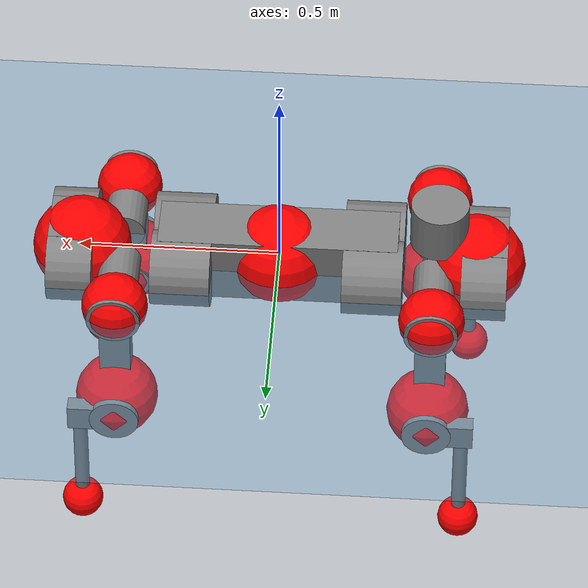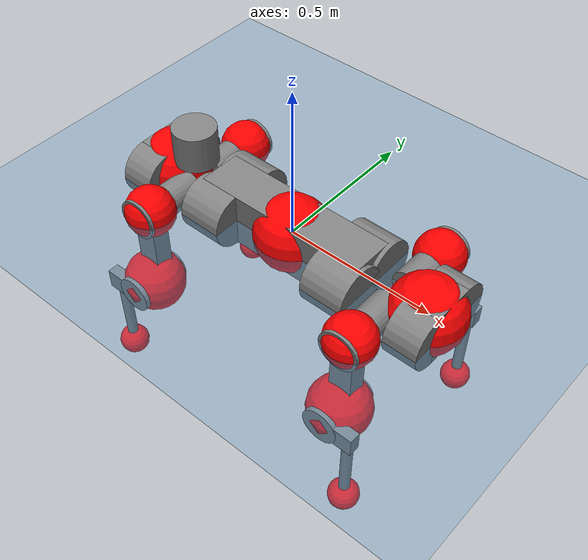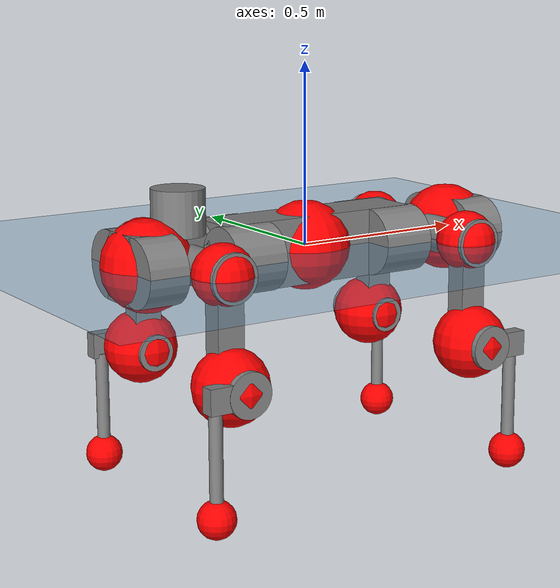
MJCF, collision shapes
<mujoco model="anymal_c">
  <compiler angle="radian" assetdir="assets" balanceinertia="true" inertiafromgeom="false"/>

  <option timestep="0.005" density="1.2" viscosity="2e-05"/>

  <size nkey="1"/>

  <visual>
    <quality shadowsize="8192"/>
    <map shadowclip="0.5"/>
  </visual>

  <default>
    <default class="/">
      <material specular="0" shininess="0.25"/>
      <geom contype="0" conaffinity="0" group="1" solref="-1000 -80"/>
      <site size="0.01 0.005 0.005" group="5"/>
      <general forcelimited="true" forcerange="-80 80" biastype="affine" gainprm="80" biasprm="0 -80 -2"/>
      <default class="anymal_c">
        <joint armature="0.01" damping="0.01" frictionloss="0.1"/>
        <default class="visual">
          <geom type="mesh" group="2"/>
          <default class="visual_zflip"/>
        </default>
        <default class="collision">
          <geom type="cylinder" group="3"/>
          <default class="foot">
            <geom size="0.03 0 0" type="sphere" condim="6" priority="1" friction="0.8 0.02 0.01" solimp="0.015 1 0.03"/>
          </default>
        </default>
      </default>
      <default class="reward_collision_sphere">
        <geom group="5" rgba="1 0 0 1"/>
      </default>
    </default>
  </default>

  <asset>
    <texture type="skybox" colorspace="auto" name="//unnamed_texture_0" builtin="gradient" rgb1="0.95 0.95 0.95" rgb2="0.95 0.95 0.95" width="100" height="600"/>
    <texture type="2d" colorspace="auto" name="texplane" builtin="checker" rgb1="0.345 0.575 0.748" rgb2="0.345 0.575 0.748" markrgb="1 1 1" width="512" height="512"/>
    <texture type="2d" colorspace="linear" name="base" file="base.png"/>
    <texture type="2d" colorspace="linear" name="top_shell" file="top_shell.png"/>
    <texture type="2d" colorspace="linear" name="bottom_shell" file="bottom_shell.png"/>
    <texture type="2d" colorspace="linear" name="remote" file="remote.png"/>
    <texture type="2d" colorspace="linear" name="hatch" file="hatch.png"/>
    <texture type="2d" colorspace="linear" name="handle" file="handle.png"/>
    <texture type="2d" colorspace="linear" name="face" file="face.png"/>
    <texture type="2d" colorspace="linear" name="battery" file="battery.png"/>
    <texture type="2d" colorspace="linear" name="lidar_cage" file="lidar_cage.png"/>
    <texture type="2d" colorspace="linear" name="depth_camera" file="depth_camera.png"/>
    <texture type="2d" colorspace="linear" name="wide_angle_camera" file="wide_angle_camera.png"/>
    <texture type="2d" colorspace="linear" name="lidar" file="lidar.png"/>
    <texture type="2d" colorspace="linear" name="drive" file="drive.png"/>
    <texture type="2d" colorspace="linear" name="hip_l" file="hip_l.png"/>
    <texture type="2d" colorspace="linear" name="shank_l" file="shank_l.png"/>
    <texture type="2d" colorspace="linear" name="foot" file="foot.png"/>
    <texture type="2d" colorspace="linear" name="thigh" file="thigh.png"/>
    <texture type="2d" colorspace="linear" name="shank_r" file="shank_r.png"/>
    <texture type="2d" colorspace="linear" name="hip_r" file="hip_r.png"/>
    <material name="MatPlane" class="/" texture="texplane" texuniform="true" texrepeat="2 2" specular="0.9" shininess="0.5"/>
    <material name="black_plastic" class="/" rgba="0.007 0.007 0.007 1"/>
    <material name="green" class="/" rgba="0.052 0.178 0.033 1"/>
    <material name="red" class="/" rgba="0.178 0.006 0.005 1"/>
    <material name="yellow" class="/" rgba="0.178 0.119 0.006 1"/>
    <material name="lwl" class="/" rgba="0.8 0.8 0.8 1"/>
    <material name="base" class="/" texture="base"/>
    <material name="top_shell" class="/" texture="top_shell"/>
    <material name="bottom_shell" class="/" texture="bottom_shell"/>
    <material name="hip_l" class="/" texture="hip_l"/>
    <material name="thigh" class="/" texture="thigh"/>
    <material name="shank_l" class="/" texture="shank_l"/>
    <material name="foot" class="/" texture="foot"/>
    <material name="hip_r" class="/" texture="hip_r"/>
    <material name="shank" class="/" texture="shank_r"/>
    <material name="hatch" class="/" texture="hatch"/>
    <material name="remote" class="/" texture="remote"/>
    <material name="handle" class="/" texture="handle"/>
    <material name="face" class="/" texture="face"/>
    <material name="depth_camera" class="/" texture="depth_camera"/>
    <material name="wide_angle_camera" class="/" texture="wide_angle_camera"/>
    <material name="battery" class="/" texture="battery"/>
    <material name="lidar_cage" class="/" texture="lidar_cage"/>
    <material name="lidar" class="/" texture="lidar"/>
    <material name="drive" class="/" texture="drive"/>
    <mesh name="base_0" class="/" file="base_0.obj"/>
    <mesh name="base_1" class="/" file="base_1.obj"/>
    <mesh name="base_2" class="/" file="base_2.obj"/>
    <mesh name="base_3" class="/" file="base_3.obj"/>
    <mesh name="base_4" class="/" file="base_4.obj"/>
    <mesh name="base_5" class="/" file="base_5.obj"/>
    <mesh name="top_shell" class="/" file="top_shell.obj"/>
    <mesh name="bottom_shell" class="/" file="bottom_shell.obj"/>
    <mesh name="remote" class="/" file="remote.obj"/>
    <mesh name="handle" class="/" file="handle.obj"/>
    <mesh name="face" class="/" file="face.obj"/>
    <mesh name="wide_angle_camera" class="/" file="wide_angle_camera.obj"/>
    <mesh name="depth_camera" class="/" file="depth_camera.obj"/>
    <mesh name="battery" class="/" file="battery.obj"/>
    <mesh name="lidar_cage" class="/" file="lidar_cage.obj"/>
    <mesh name="lidar" class="/" file="lidar.obj"/>
    <mesh name="drive" class="/" file="drive.obj"/>
    <mesh name="hip_l" class="/" file="hip_l.obj"/>
    <mesh name="thigh" class="/" file="thigh.obj"/>
    <mesh name="shank_l" class="/" file="shank_l.obj"/>
    <mesh name="foot" class="/" file="foot.obj"/>
    <mesh name="hip_r" class="/" file="hip_r.obj"/>
    <mesh name="hatch" class="/" file="hatch.obj"/>
    <mesh name="shank_r" class="/" file="shank_r.obj"/>
  </asset>

  <worldbody>
    <geom name="floor" class="/" size="100 100 0.125" type="plane" group="0" material="MatPlane"/>
    <light name="toplight_shadow" class="/" pos="0 0 5" dir="0.0990148 0.0990148 -0.990148" type="directional" ambient="0.04 0.04 0.04" diffuse="0.55 0.55 0.55" specular="0.12 0.12 0.12"/>
    <light name="toplight_fill" class="/" pos="0 0 5" dir="0.0990148 0.0990148 -0.990148" type="directional" castshadow="false" ambient="0.04 0.04 0.04" diffuse="0.3 0.3 0.3" specular="0.08 0.08 0.08"/>
    <body name="trunk" childclass="anymal_c" pos="0.00105083 0.000173489 -0.000886172" quat="1 0.000102254 -0.000116087 -7.68886e-05">
      <inertial pos="-4.38858e-05 -0.00240084 0.0487056" quat="0.496807 0.500392 0.503215 0.499564" mass="21.3646" diaginertia="0.993206 0.590986 0.211521"/>
      <joint name="//unnamed_joint_0" type="free" armature="0" damping="0" frictionloss="0"/>
      <geom name="//unnamed_geom_1" class="visual" material="green" mesh="base_0"/>
      <geom name="//unnamed_geom_2" class="visual" material="yellow" mesh="base_1"/>
      <geom name="//unnamed_geom_3" class="visual" material="red" mesh="base_2"/>
      <geom name="//unnamed_geom_4" class="visual" material="black_plastic" mesh="base_3"/>
      <geom name="//unnamed_geom_5" class="visual" material="lwl" mesh="base_4"/>
      <geom name="//unnamed_geom_6" class="visual" material="base" mesh="base_5"/>
      <geom name="trunk_1" class="collision" size="0.297349 0.0717738 0.0922806" type="box"/>
      <geom name="trunk_2" class="collision" size="0.0922806 0.0743372" pos="0.237351 0.0692182 0" quat="0.707107 0 0.707107 0"/>
      <geom name="trunk_3" class="collision" size="0.0922806 0.0743372" pos="-0.237351 0.0692182 0" quat="0.707107 0 0.707107 0"/>
      <geom name="trunk_4" class="collision" size="0.0922806 0.0743372" pos="0.237351 -0.0692182 0" quat="0.707107 0 0.707107 0"/>
      <geom name="trunk_5" class="collision" size="0.0922806 0.0743372" pos="-0.237351 -0.0692182 0" quat="0.707107 0 0.707107 0"/>
      <geom name="//unnamed_geom_12" class="visual" material="top_shell" mesh="top_shell"/>
      <geom name="//unnamed_geom_13" class="visual" material="bottom_shell" mesh="bottom_shell"/>
      <geom name="//unnamed_geom_14" class="visual" material="remote" mesh="remote"/>
      <geom name="//unnamed_geom_15" class="visual" material="handle" mesh="handle"/>
      <geom name="//unnamed_geom_16" class="visual" pos="0.452331 0 0" quat="1 0 0 0" material="face" mesh="face"/>
      <geom name="trunk_6" class="collision" size="0.0563937 0.0717738 0.0922806" pos="0.51235 0 0" type="box"/>
      <geom name="//unnamed_geom_18" class="collision" size="0.0922806 0.0563937" pos="0.51235 0.0692182 0" quat="0.707107 0 0.707107 0"/>
      <geom name="//unnamed_geom_19" class="collision" size="0.0922806 0.0563937" pos="0.51235 -0.0692182 0" quat="0.707107 0 0.707107 0"/>
      <geom name="//unnamed_geom_20" class="visual" pos="0.50378 0 -0.0283563" quat="0.965926 0 0.258819 0" material="depth_camera" mesh="depth_camera"/>
      <geom name="//unnamed_geom_21" class="visual" pos="0.55982 0 0.0149089" material="wide_angle_camera" mesh="wide_angle_camera"/>
      <geom name="//unnamed_geom_22" class="visual_zflip" pos="-0.452331 0 0" quat="0 0 0 1" material="face" mesh="face"/>
      <geom name="trunk_7" class="collision" size="0.0563937 0.0717738 0.0922806" pos="-0.51235 0 0" quat="0 0 0 1" type="box"/>
      <geom name="//unnamed_geom_24" class="collision" size="0.0922806 0.0563937" pos="-0.51235 -0.0692182 0" quat="0 -0.707107 0 0.707107"/>
      <geom name="//unnamed_geom_25" class="collision" size="0.0922806 0.0563937" pos="-0.51235 0.0692182 0" quat="0 -0.707107 0 0.707107"/>
      <geom name="//unnamed_geom_26" class="visual" pos="-0.50378 0 -0.0283563" quat="0 -0.258819 0 0.965926" material="depth_camera" mesh="depth_camera"/>
      <geom name="//unnamed_geom_27" class="visual_zflip" pos="-0.55982 0 0.0149089" quat="0 0 0 1" material="wide_angle_camera" mesh="wide_angle_camera"/>
      <geom name="//unnamed_geom_28" class="visual" material="battery" mesh="battery"/>
      <geom name="//unnamed_geom_29" class="visual" pos="0 0.0742579 0.0296562" quat="0.683013 -0.183013 0.183013 0.683013" material="depth_camera" mesh="depth_camera"/>
      <geom name="//unnamed_geom_30" class="visual" pos="0 -0.0742579 0.0296562" quat="0.683013 0.183013 0.183013 -0.683013" material="depth_camera" mesh="depth_camera"/>
      <geom name="//unnamed_geom_31" class="visual" pos="-0.397222 0 0.0732002" quat="1 0 0 0" material="lidar_cage" mesh="lidar_cage"/>
      <geom name="trunk_8" class="collision" size="0.0717738 0.0615204" pos="-0.397222 0 0.132956"/>
      <geom name="//unnamed_geom_33" class="visual" pos="-0.397222 -4.02447e-05 0.14162" quat="0.707107 0 0 -0.707107" material="lidar" mesh="lidar"/>
      <geom name="//unnamed_geom_34" class="visual" pos="0.327271 0.102841 -1.22313e-10" quat="0.258819 0.965926 0 0" material="drive" mesh="drive"/>
      <geom name="//unnamed_geom_35" class="visual" pos="0.327271 -0.102841 1.22313e-10" quat="0.258819 -0.965926 0 0" material="drive" mesh="drive"/>
      <geom name="//unnamed_geom_36" class="visual" pos="-0.327271 0.102841 1.22313e-10" quat="0 0 0.965926 -0.258819" material="drive" mesh="drive"/>
      <geom name="//unnamed_geom_37" class="visual" pos="-0.327271 -0.102841 -1.22313e-10" quat="0 0 -0.965926 -0.258819" material="drive" mesh="drive"/>
      <geom name="//unnamed_geom_38" class="visual" pos="0.126587 0 0.0727023" quat="1 0 0 0" material="hatch" mesh="hatch"/>
      <geom name="//unnamed_geom_39" class="reward_collision_sphere" size="0.123041"/>
      <geom name="//unnamed_geom_40" class="reward_collision_sphere" size="0.123041" pos="0.491071 0 0"/>
      <geom name="//unnamed_geom_41" class="reward_collision_sphere" size="0.123041" pos="-0.491071 0 0"/>
      <site name="imu" pos="0.284188 0.00818648 0.0334536" size="0.0102534"/>
      <camera name="track" pos="0 -1.97766 0" quat="0.707107 0.707107 0 0" mode="trackcom"/>
      <camera name="ego_camera" pos="0.491071 0 -0.0398369" quat="-0.5 -0.5 0.5 0.5"/>
      <body name="LF_HIP" pos="0.326106 0.101533 -0.000607459" quat="0.258719 0.965953 -3.72181e-05 9.7872e-05">
        <inertial pos="0.0620448 -0.0164403 -0.00854302" quat="-0.128022 0.709713 -0.135273 0.679426" mass="2.90194" diaginertia="0.00874518 0.00438413 0.00312653"/>
        <joint name="LF_HAA" pos="0 0 0" axis="0.999989 0.00245802 0.00401938" range="-0.717135 0.478394" armature="0.0105137" damping="0.0135678" frictionloss="0.0966568"/>
        <geom name="//unnamed_geom_42" class="visual" pos="0 -7.19511e-06 1.18179e-06" quat="0.258819 -0.965926 0 0" material="hip_l" mesh="hip_l"/>
        <geom name="//unnamed_geom_43" class="visual" pos="0.065367 -0.0778598 -0.0450048" quat="0.183013 -0.683013 0.683013 0.183013" material="drive" mesh="drive"/>
        <geom name="//unnamed_geom_44" class="collision" size="0.051267 0.0717738" pos="0.0653669 -0.0118262 -0.00687684" quat="-0.353553 -0.612372 0.612372 -0.353553"/>
        <body name="LF_THIGH" pos="0.0654116 -0.0695527 -0.0414832" quat="0.1819 -0.682993 0.68321 0.183457">
          <inertial pos="0.0343681 -2.24669e-05 -0.244338" quat="0.992596 -0.000615966 -0.0793659 0.0919497" mass="3.23721" diaginertia="0.0465622 0.0271921 0.00402696"/>
          <joint name="LF_HFE" pos="0 0 0" axis="0.999997 0.0022993 0.00039693" stiffness="0.0027687" range="-3.09869 3.15909" armature="0.0108166" damping="0.0173208" frictionloss="0.100299"/>
          <geom name="//unnamed_geom_45" class="visual" pos="0.00203809 3.21156e-06 0" quat="0.707107 0 0 -0.707107" material="thigh" mesh="thigh"/>
          <geom name="//unnamed_geom_46" class="collision" size="0.0666471 0.0410136" pos="0.0436507 0 0" quat="0.5 0.5 -0.5 -0.5"/>
          <geom name="//unnamed_geom_47" class="collision" size="0.0384503 0.0307602 0.144895" pos="0.032738 0 -0.140738" quat="0.707107 0 0 -0.707107" type="box"/>
          <geom name="//unnamed_geom_48" class="visual" pos="0.109454 0 -0.283838" quat="1 0 0 0" material="drive" mesh="drive"/>
          <geom name="//unnamed_geom_49" class="collision" size="0.051267 0.0717738" pos="0.0330654 0 -0.283838" quat="0.707107 0 0.707107 0"/>
          <geom name="//unnamed_geom_50" class="reward_collision_sphere" size="0.0820272" pos="0.0272817 0 0"/>
          <body name="LF_SHANK" pos="0.109422 0.00204266 -0.284598" quat="1 -0.000241194 -0.000344772 -0.000158155">
            <inertial pos="0.00627586 -0.0614895 -0.0801904" quat="0.992916 -0.116047 -0.00111052 -0.0255061" mass="0.636839" diaginertia="0.0154346 0.00883375 0.00109317"/>
            <joint name="LF_KFE" pos="0 0 0" axis="0.999999 0.00108633 -0.00105638" range="-3.12007 3.13346" armature="0.00980492" damping="0.011439" frictionloss="0.101614"/>
            <geom name="//unnamed_geom_51" class="visual" pos="0.000664578 0.00354356 0" quat="0.707107 0 0 -0.707107" material="shank_l" mesh="shank_l"/>
            <geom name="LF_kfe_act" class="collision" size="0.0615204 0.0205068" pos="0.0218254 0 0" quat="0.5 0.5 -0.5 -0.5"/>
            <geom name="//unnamed_geom_53" class="collision" size="0.058956 0.0346052 0.0194815" pos="0.0218254 -0.0568568 0" quat="0.5 0.5 -0.5 -0.5" type="box"/>
            <geom name="//unnamed_geom_54" class="visual" pos="0.0142409 -0.0858257 -0.336592" quat="0.382683 0 0 -0.92388" material="foot" mesh="foot"/>
            <geom name="LF_calf" class="collision" size="0.0179435 0.144831" pos="0.014241 -0.0869677 -0.168296" quat="0.707107 0 0 -0.707107"/>
            <geom name="LF_foot" class="foot" size="0.0302233" pos="0.014241 -0.0869677 -0.314183" quat="0.707107 0 0 -0.707107"/>
            <geom name="//unnamed_geom_57" class="reward_collision_sphere" size="0.102534" pos="-0.0545634 0 0"/>
            <geom name="//unnamed_geom_58" class="reward_collision_sphere" size="0.051267" pos="0.014241 -0.0869677 -0.314183"/>
            <site name="LF_foot" class="foot" pos="0.014241 -0.0869677 -0.314183" quat="0.707107 0 0 -0.707107" size="0.0102534"/>
          </body>
        </body>
      </body>
      <body name="RF_HIP" pos="0.32524 -0.102924 0.00156406" quat="0.258759 -0.965942 0.000115565 8.03654e-05">
        <inertial pos="0.0611287 0.012855 -0.00945653" quat="0.132982 0.669971 0.132267 0.718303" mass="2.9597" diaginertia="0.00879122 0.00476566 0.00313547"/>
        <joint name="RF_HAA" pos="0 0 0" axis="0.999972 -0.00698907 -0.00274983" range="-0.500625 0.71798" armature="0.0102345" damping="0.00184235" frictionloss="0.0984777"/>
        <geom name="//unnamed_geom_59" class="visual" pos="0 7.19505e-06 1.18179e-06" quat="0.258819 0.965926 0 0" material="hip_r" mesh="hip_r"/>
        <geom name="//unnamed_geom_60" class="visual" pos="0.0653669 0.0778598 -0.0450048" quat="0.183013 0.683013 0.683013 -0.183013" material="drive" mesh="drive"/>
        <geom name="//unnamed_geom_61" class="collision" size="0.051267 0.0717738" pos="0.0653669 0.0118262 -0.00687684" quat="-0.353553 0.612372 0.612372 0.353553"/>
        <body name="RF_THIGH" pos="0.0659536 0.0719606 -0.0440433" quat="0.18376 0.683243 0.682573 -0.183043">
          <inertial pos="0.0362643 0.000983605 -0.244717" quat="0.992941 -0.00285191 -0.0809275 0.0866668" mass="3.41851" diaginertia="0.0467229 0.0277695 0.00426948"/>
          <joint name="RF_HFE" pos="0 0 0" axis="0.999999 -0.000646947 -0.00128382" range="-3.16016 3.15213" armature="0.00977879" damping="0.0119349" frictionloss="0.0998788"/>
          <geom name="//unnamed_geom_62" class="visual" pos="0.00203809 3.21156e-06 0" quat="0.707107 0 0 -0.707107" material="thigh" mesh="thigh"/>
          <geom name="//unnamed_geom_63" class="collision" size="0.0666471 0.0410136" pos="0.0436507 0 0" quat="0.5 0.5 0.5 0.5"/>
          <geom name="//unnamed_geom_64" class="collision" size="0.0384503 0.0307602 0.144895" pos="0.032738 0 -0.140738" quat="0.707107 0 0 0.707107" type="box"/>
          <geom name="//unnamed_geom_65" class="visual" pos="0.109454 0 -0.283838" quat="1 0 0 0" material="drive" mesh="drive"/>
          <geom name="//unnamed_geom_66" class="collision" size="0.051267 0.0717738" pos="0.0330654 0 -0.283838" quat="0.707107 0 0.707107 0"/>
          <geom name="//unnamed_geom_67" class="reward_collision_sphere" size="0.0820272" pos="0.0272817 0 0"/>
          <body name="RF_SHANK" pos="0.108571 -0.000641744 -0.28258" quat="1 0.000171617 -7.85941e-05 -0.000133328">
            <inertial pos="0.00449484 0.0606813 -0.0800661" quat="0.993871 0.10916 -0.00712201 0.0159567" mass="0.653639" diaginertia="0.0159801 0.00896778 0.00111898"/>
            <joint name="RF_KFE" pos="0 0 0" axis="1 -0.000431998 0.000546073" range="-3.18621 3.12227" armature="0.0113501" damping="0.0217795" frictionloss="0.100893"/>
            <geom name="//unnamed_geom_68" class="visual" pos="0.000664574 -0.00354356 0" quat="0.707107 0 0 0.707107" material="shank" mesh="shank_r"/>
            <geom name="RF_kfe_act" class="collision" size="0.0615204 0.0205068" pos="0.0218254 0 0" quat="0.5 0.5 0.5 0.5"/>
            <geom name="//unnamed_geom_70" class="collision" size="0.058956 0.0346052 0.0194815" pos="0.0218254 0.0568568 0" quat="0.5 0.5 0.5 0.5" type="box"/>
            <geom name="//unnamed_geom_71" class="visual" pos="0.0142412 0.0858257 -0.336592" quat="0.382683 0 0 0.92388" material="foot" mesh="foot"/>
            <geom name="RF_calf" class="collision" size="0.0179435 0.144831" pos="0.014241 0.0869677 -0.168296" quat="0.707107 0 0 0.707107"/>
            <geom name="RF_foot" class="foot" size="0.0278974" pos="0.014241 0.0869677 -0.314183" quat="0.707107 0 0 0.707107"/>
            <geom name="//unnamed_geom_74" class="reward_collision_sphere" size="0.102534" pos="-0.0545634 0 0"/>
            <geom name="//unnamed_geom_75" class="reward_collision_sphere" size="0.051267" pos="0.014241 0.0869677 -0.314183"/>
            <site name="RF_foot" class="foot" pos="0.014241 0.0869677 -0.314183" quat="0.707107 0 0 0.707107" size="0.0102534"/>
          </body>
        </body>
      </body>
      <body name="LH_HIP" pos="-0.324222 0.101801 -0.000970311" quat="2.55997e-05 1.92954e-05 0.966007 -0.258518">
        <inertial pos="0.0621324 0.0160865 -0.010939" quat="0.135753 0.673611 0.134937 0.713871" mass="3.09088" diaginertia="0.00966557 0.00485787 0.00331707"/>
        <joint name="LH_HAA" pos="0 0 0" axis="0.999933 0.000223097 -0.0115825" range="-0.492272 0.706634" armature="0.0102491" damping="0" frictionloss="0.102166"/>
        <geom name="//unnamed_geom_76" class="visual" pos="0 7.19505e-06 1.18179e-06" quat="-0.258819 -0.965926 0 0" material="hip_r" mesh="hip_r"/>
        <geom name="//unnamed_geom_77" class="visual" pos="0.0653669 0.0778598 -0.0450048" quat="0.183013 0.683013 0.683013 -0.183013" material="drive" mesh="drive"/>
        <geom name="//unnamed_geom_78" class="collision" size="0.051267 0.0717738" pos="0.0653669 0.0118262 -0.00687684" quat="-0.353553 0.612372 0.612372 0.353553"/>
        <body name="LH_THIGH" pos="0.0650918 0.0716239 -0.0431176" quat="0.183601 0.68294 0.682952 -0.182923">
          <inertial pos="0.0310587 -0.00104457 -0.247117" quat="0.992946 -0.00459216 -0.0796347 0.0877245" mass="3.27618" diaginertia="0.0444823 0.0282381 0.00398924"/>
          <joint name="LH_HFE" pos="0 0 0" axis="0.999999 0.000181137 -0.00145013" stiffness="0.00778406" range="-3.14469 3.11772" armature="0.0098284" damping="0" frictionloss="0.10161"/>
          <geom name="//unnamed_geom_79" class="visual" pos="0.00203809 3.21156e-06 0" quat="0.707107 0 0 -0.707107" material="thigh" mesh="thigh"/>
          <geom name="//unnamed_geom_80" class="collision" size="0.0666471 0.0410136" pos="0.0436507 0 0" quat="0.5 0.5 -0.5 -0.5"/>
          <geom name="//unnamed_geom_81" class="collision" size="0.0384503 0.0307602 0.144895" pos="0.032738 0 -0.140738" quat="0.707107 0 0 -0.707107" type="box"/>
          <geom name="//unnamed_geom_82" class="visual" pos="0.109454 0 -0.283838" quat="1 0 0 0" material="drive" mesh="drive"/>
          <geom name="//unnamed_geom_83" class="collision" size="0.051267 0.0717738" pos="0.0330654 0 -0.283838" quat="0.707107 0 0.707107 0"/>
          <geom name="//unnamed_geom_84" class="reward_collision_sphere" size="0.0820272" pos="0.0272817 0 0"/>
          <body name="LH_SHANK" pos="0.109803 -0.00182543 -0.282522" quat="1 1.02133e-05 0.000178237 -4.72497e-05">
            <inertial pos="0.006045 0.0628124 -0.0793478" quat="0.992879 0.116382 -0.00531172 0.0248601" mass="0.654593" diaginertia="0.0160034 0.00927655 0.00111808"/>
            <joint name="LH_KFE" pos="0 0 0" axis="0.999989 -0.00409011 -0.0020879" range="-3.10084 3.11441" armature="0.0115527" damping="0.0217063" frictionloss="0.0918566"/>
            <geom name="//unnamed_geom_85" class="visual" pos="0.000664574 -0.00354356 0" quat="-0.707107 0 0 -0.707107" material="shank" mesh="shank_r"/>
            <geom name="LH_kfe_act" class="collision" size="0.0615204 0.0205068" pos="0.0218254 0 0" quat="0.5 0.5 -0.5 -0.5"/>
            <geom name="//unnamed_geom_87" class="collision" size="0.058956 0.0346052 0.0194815" pos="0.0218254 0.0568568 0" quat="0.5 0.5 -0.5 -0.5" type="box"/>
            <geom name="//unnamed_geom_88" class="visual" pos="0.0142412 0.0858257 -0.336592" quat="-0.382683 0 0 -0.92388" material="foot" mesh="foot"/>
            <geom name="LH_calf" class="collision" size="0.0179435 0.144831" pos="0.014241 0.0869677 -0.168296" quat="0.707107 0 0 -0.707107"/>
            <geom name="LH_foot" class="foot" size="0.0315428" pos="0.014241 0.0869677 -0.314183" quat="0.707107 0 0 -0.707107"/>
            <geom name="//unnamed_geom_91" class="reward_collision_sphere" size="0.102534" pos="-0.0545634 0 0"/>
            <geom name="//unnamed_geom_92" class="reward_collision_sphere" size="0.051267" pos="0.014241 0.0869677 -0.314183"/>
            <site name="LH_foot" class="foot" pos="0.014241 0.0869677 -0.314183" quat="0.707107 0 0 -0.707107" size="0.0102534"/>
          </body>
        </body>
      </body>
      <body name="RH_HIP" pos="-0.324558 -0.103444 0.000224908" quat="6.04985e-05 0.000103572 -0.965974 -0.258637">
        <inertial pos="0.0611863 -0.0150152 -0.011068" quat="-0.121402 0.710944 -0.146256 0.677074" mass="2.97396" diaginertia="0.00878905 0.00448507 0.00311132"/>
        <joint name="RH_HAA" pos="0 0 0" axis="0.999907 0.00752874 -0.0113882" range="-0.77199 0.498201" armature="0.0105096" damping="0.00840578" frictionloss="0.102315"/>
        <geom name="//unnamed_geom_93" class="visual" pos="0 -7.19511e-06 1.18179e-06" quat="-0.258819 0.965926 0 0" material="hip_l" mesh="hip_l"/>
        <geom name="//unnamed_geom_94" class="visual" pos="0.065367 -0.0778598 -0.0450048" quat="-0.183013 0.683013 -0.683013 -0.183013" material="drive" mesh="drive"/>
        <geom name="//unnamed_geom_95" class="collision" size="0.051267 0.0717738" pos="0.0653669 -0.0118262 -0.00687684" quat="0.353553 0.612372 -0.612372 0.353553"/>
        <body name="RH_THIGH" pos="0.0678496 -0.0720927 -0.0438328" quat="-0.182657 0.682424 -0.683712 -0.182952">
          <inertial pos="0.0343313 0.000464483 -0.245523" quat="0.993166 -0.0044471 -0.0812186 0.0836961" mass="3.20493" diaginertia="0.0453072 0.0278015 0.00406081"/>
          <joint name="RH_HFE" pos="0 0 0" axis="0.999989 0.000446462 0.00476381" stiffness="0.00295632" range="-3.12742 3.16333" armature="0.0105712" damping="0.00910483" frictionloss="0.103615"/>
          <geom name="//unnamed_geom_96" class="visual" pos="0.00203809 3.21156e-06 0" quat="0.707107 0 0 -0.707107" material="thigh" mesh="thigh"/>
          <geom name="//unnamed_geom_97" class="collision" size="0.0666471 0.0410136" pos="0.0436507 0 0" quat="0.5 0.5 0.5 0.5"/>
          <geom name="//unnamed_geom_98" class="collision" size="0.0384503 0.0307602 0.144895" pos="0.032738 0 -0.140738" quat="0.707107 0 0 0.707107" type="box"/>
          <geom name="//unnamed_geom_99" class="visual" pos="0.109454 0 -0.283838" quat="1 0 0 0" material="drive" mesh="drive"/>
          <geom name="//unnamed_geom_100" class="collision" size="0.051267 0.0717738" pos="0.0330654 0 -0.283838" quat="0.707107 0 0.707107 0"/>
          <geom name="//unnamed_geom_101" class="reward_collision_sphere" size="0.0820272" pos="0.0272817 0 0"/>
          <body name="RH_SHANK" pos="0.108918 0.0022189 -0.283657" quat="0.999999 0.000753411 0.000477383 -0.000845619">
            <inertial pos="0.00810102 -0.0600262 -0.0814097" quat="0.993316 -0.112404 -0.0090943 -0.0246289" mass="0.64718" diaginertia="0.0157187 0.00874319 0.00110024"/>
            <joint name="RH_KFE" pos="0 0 0" axis="0.999996 0.00198452 -0.00215961" range="-3.13263 3.18357" armature="0.010248" damping="0.0218339" frictionloss="0.100663"/>
            <geom name="//unnamed_geom_102" class="visual" pos="0.000664578 0.00354356 0" quat="0.707107 0 0 -0.707107" material="shank_l" mesh="shank_l"/>
            <geom name="RH_kfe_act" class="collision" size="0.0615204 0.0205068" pos="0.0218254 0 0" quat="0.5 0.5 0.5 0.5"/>
            <geom name="//unnamed_geom_104" class="collision" size="0.058956 0.0346052 0.0194815" pos="0.0218254 -0.0568568 0" quat="0.5 0.5 0.5 0.5" type="box"/>
            <geom name="//unnamed_geom_105" class="visual" pos="0.0142409 -0.0858257 -0.336592" quat="0.382683 0 0 -0.92388" material="foot" mesh="foot"/>
            <geom name="RH_calf" class="collision" size="0.0179435 0.144831" pos="0.014241 -0.0869677 -0.168296" quat="0.707107 0 0 0.707107"/>
            <geom name="RH_foot" class="foot" size="0.0280396" pos="0.014241 -0.0869677 -0.314183" quat="0.707107 0 0 0.707107"/>
            <geom name="//unnamed_geom_108" class="reward_collision_sphere" size="0.102534" pos="-0.0545634 0 0"/>
            <geom name="//unnamed_geom_109" class="reward_collision_sphere" size="0.051267" pos="0.014241 -0.0869677 -0.314183"/>
            <site name="RH_foot" class="foot" pos="0.014241 -0.0869677 -0.314183" quat="0.707107 0 0 0.707107" size="0.0102534"/>
          </body>
        </body>
      </body>
    </body>
  </worldbody>

  <contact>
    <pair class="/" geom1="floor" geom2="LF_foot" name="//unnamed_contact_0"/>
    <pair class="/" geom1="floor" geom2="RF_foot" name="//unnamed_contact_1"/>
    <pair class="/" geom1="floor" geom2="LH_foot" name="//unnamed_contact_2"/>
    <pair class="/" geom1="floor" geom2="RH_foot" name="//unnamed_contact_3"/>
  </contact>

  <actuator>
    <general name="LF_HAA" class="/" joint="LF_HAA" forcerange="-77.674 77.674" gainprm="81.6831" biasprm="0 -81.6831 -2.01731"/>
    <general name="LF_HFE" class="/" joint="LF_HFE" forcerange="-74.0698 74.0698" gainprm="81.6831" biasprm="0 -81.6831 -2.01731"/>
    <general name="LF_KFE" class="/" joint="LF_KFE" forcerange="-85.3856 85.3856" gainprm="81.6831" biasprm="0 -81.6831 -2.01731"/>
    <general name="RF_HAA" class="/" joint="RF_HAA" forcerange="-84.5584 84.5584" gainprm="81.6831" biasprm="0 -81.6831 -2.01731"/>
    <general name="RF_HFE" class="/" joint="RF_HFE" forcerange="-88.6533 88.6533" gainprm="81.6831" biasprm="0 -81.6831 -2.01731"/>
    <general name="RF_KFE" class="/" joint="RF_KFE" forcerange="-84.5222 84.5222" gainprm="81.6831" biasprm="0 -81.6831 -2.01731"/>
    <general name="LH_HAA" class="/" joint="LH_HAA" forcerange="-81.9778 81.9778" gainprm="81.6831" biasprm="0 -81.6831 -2.01731"/>
    <general name="LH_HFE" class="/" joint="LH_HFE" forcerange="-78.1355 78.1355" gainprm="81.6831" biasprm="0 -81.6831 -2.01731"/>
    <general name="LH_KFE" class="/" joint="LH_KFE" forcerange="-81.0971 81.0971" gainprm="81.6831" biasprm="0 -81.6831 -2.01731"/>
    <general name="RH_HAA" class="/" joint="RH_HAA" forcerange="-81.5976 81.5976" gainprm="81.6831" biasprm="0 -81.6831 -2.01731"/>
    <general name="RH_HFE" class="/" joint="RH_HFE" forcerange="-89.6129 89.6129" gainprm="81.6831" biasprm="0 -81.6831 -2.01731"/>
    <general name="RH_KFE" class="/" joint="RH_KFE" forcerange="-79.1762 79.1762" gainprm="81.6831" biasprm="0 -81.6831 -2.01731"/>
  </actuator>

  <sensor>
    <gyro site="imu" name="imu_angular_velocity"/>
    <velocimeter site="imu" name="imu_linear_velocity"/>
    <framelinvel objtype="site" objname="LF_foot" name="LF_foot_global_linear_velocity"/>
    <framelinvel objtype="site" objname="RF_foot" name="RF_foot_global_linear_velocity"/>
    <framelinvel objtype="site" objname="LH_foot" name="LH_foot_global_linear_velocity"/>
    <framelinvel objtype="site" objname="RH_foot" name="RH_foot_global_linear_velocity"/>
  </sensor>

  <keyframe>
    <key name="home" qpos="0 0 0.55 1 0 0 0 0 0.4 -0.8 0 -0.4 0.8 0 -0.4 0.8 0 0.4 -0.8"/>
  </keyframe>
</mujoco>
